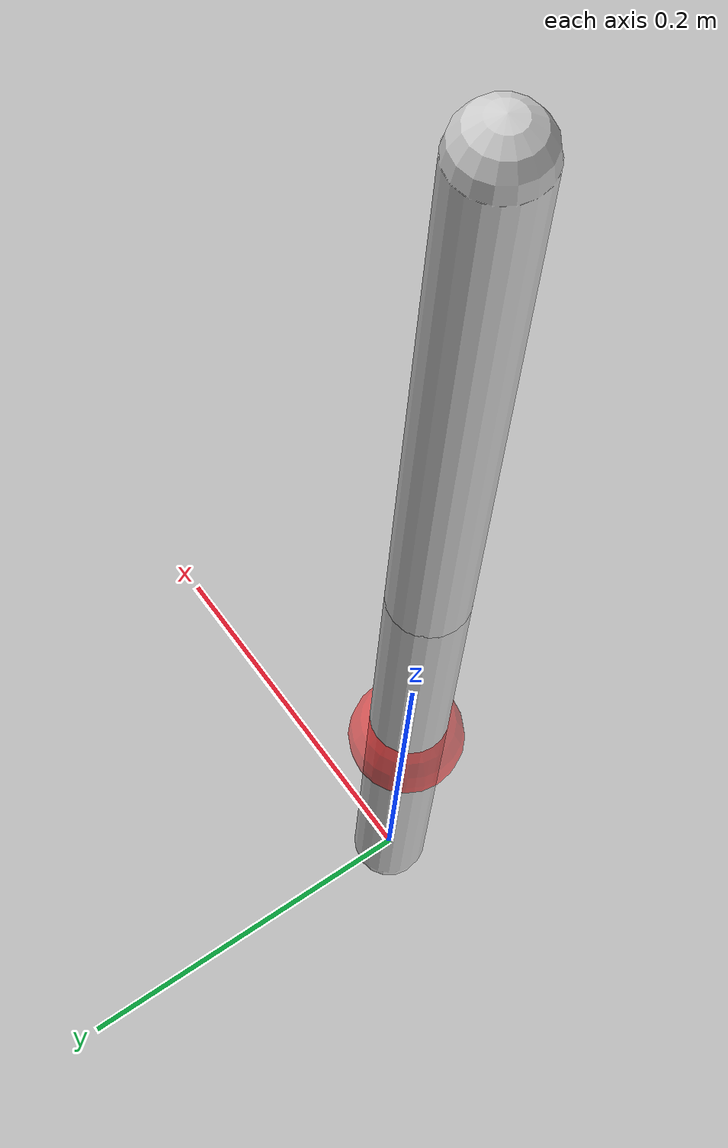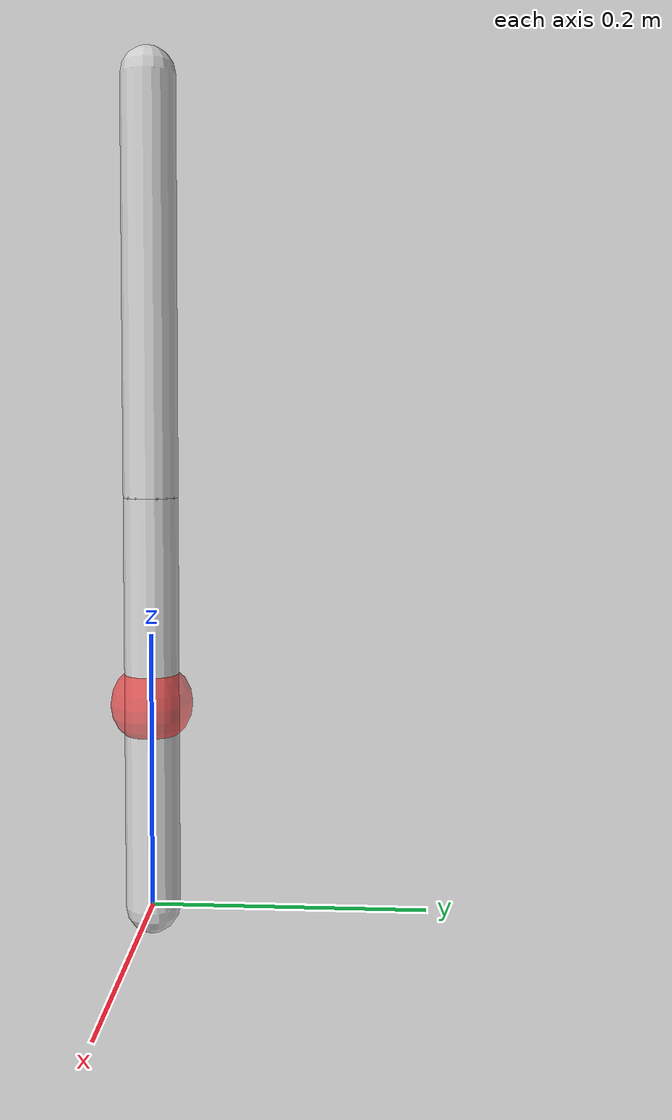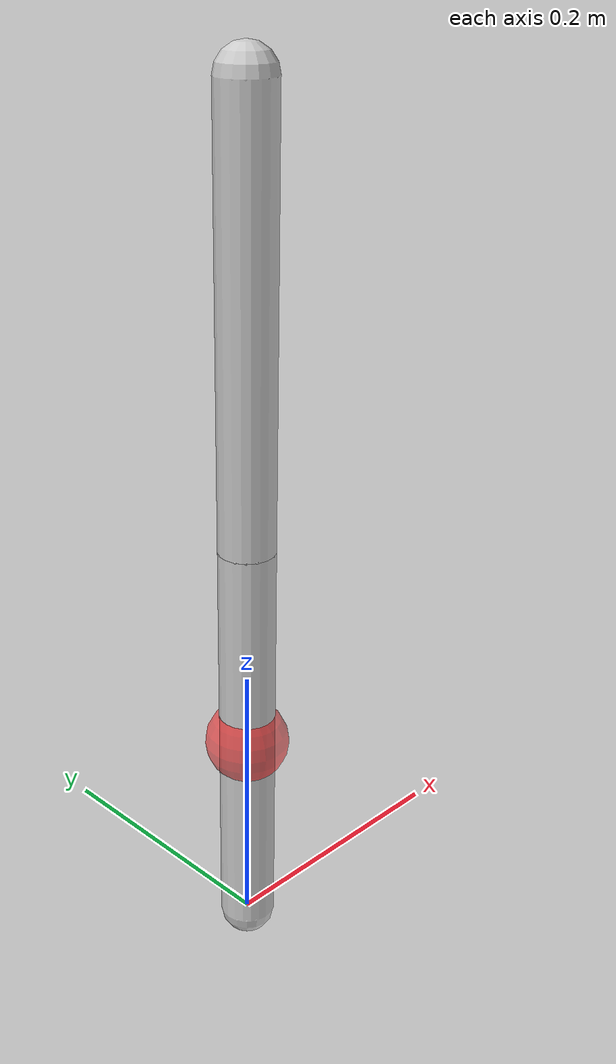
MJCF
<mujoco model="muscle_test">
    <compiler angle="degree" coordinate="local"/>
    <option gravity="0 0 -9.81"/>

    <worldbody>
        <body name="upper_arm" pos="0 0 0">
            <geom type="capsule" fromto="0 0 0 0 0 0.3" size="0.02" rgba="0.8 0.8 0.8 1"/>
            <joint name="elbow" type="hinge" axis="0 1 0" pos="0 0 0.3" range="-150 0"/>

            <!-- Muscle visualization points -->
            <site name="muscle_origin" pos="0 0 0.1" size="0.005" rgba="1 0 0 1"/>
            <site name="muscle_insertion" pos="0 0 0.2" size="0.005" rgba="1 0 0 1"/>

            <!-- Wrapping object (just visual/physical) -->
            <geom name="wrap_geom" type="sphere" pos="0 0 0.15" size="0.03" rgba="1 0 0 0.5"/>
            <!-- Site at same location, used for tendon -->
            <site name="wrap_site" pos="0 0 0.15" size="0.003"/>

            <body name="forearm" pos="0 0 0.3">
                <geom type="capsule" fromto="0 0 0 0 0 0.3" size="0.02" rgba="0.8 0.8 0.8 1"/>
                <site name="origin" pos="0 0 0.05" size="0.005"/>
                <site name="insertion" pos="0 0 0.25" size="0.005"/>
            </body>
        </body>
    </worldbody>

    <tendon>
        <spatial name="bicep" width="0.01" rgba="1 0 0 0.8">
            <site site="muscle_origin"/>
            <site site="wrap_site"/>
            <site site="muscle_insertion"/>
        </spatial>
    </tendon>

    <actuator>
        <motor name="bicep_motor" joint="elbow" gear="1" ctrlrange="-1 1"/>
    </actuator>

    <visual>
        <global offwidth="1200" offheight="900"/>
        <quality shadowsize="2048"/>
    </visual>
</mujoco>
